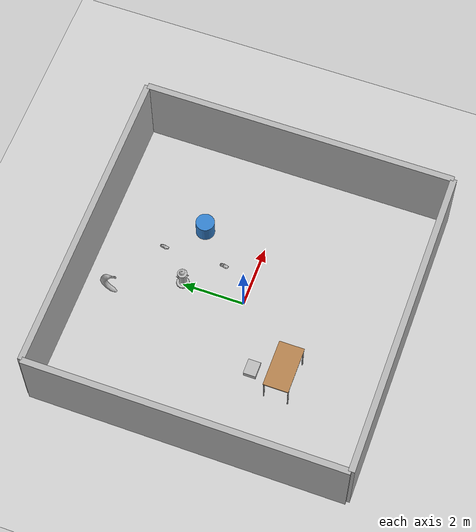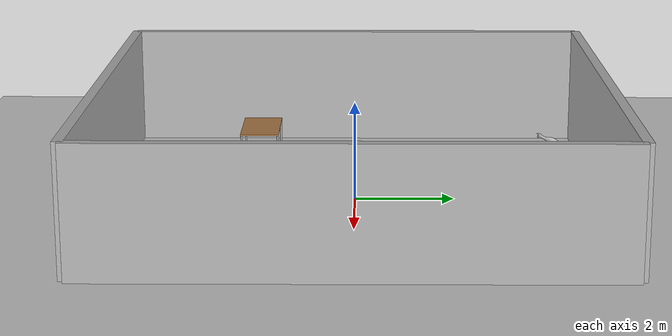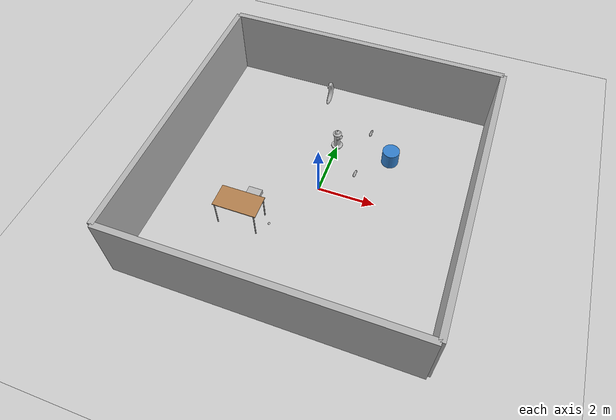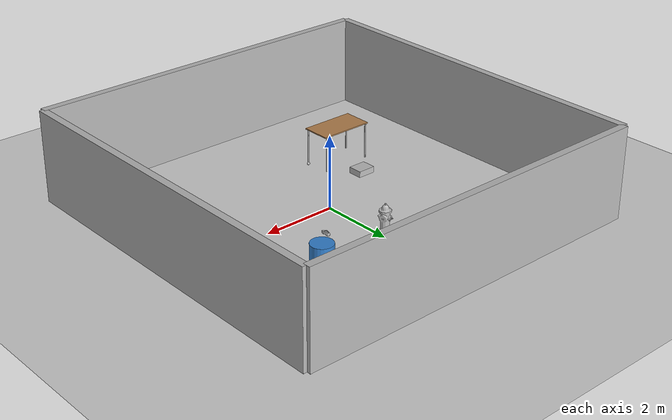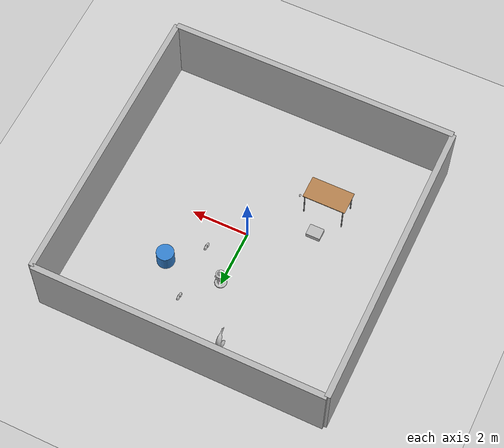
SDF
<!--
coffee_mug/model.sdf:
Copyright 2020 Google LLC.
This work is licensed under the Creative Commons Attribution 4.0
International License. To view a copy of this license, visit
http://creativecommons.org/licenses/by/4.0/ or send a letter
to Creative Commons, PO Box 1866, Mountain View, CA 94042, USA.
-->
<sdf version="1.11">
 <world name="simple_world">
  <physics name="default_physics" type="ode">
   <max_step_size>0.005</max_step_size>
   <real_time_update_rate>200</real_time_update_rate>
   <ode><solver><type>quick</type><iters>10</iters><precon_iters>0</precon_iters><sor>1.2</sor></solver></ode>
  </physics>
  <plugin filename="gz-sim-physics-system" name="gz::sim::systems::Physics"/>
  <plugin filename="gz-sim-user-commands-system" name="gz::sim::systems::UserCommands"/>
  <plugin filename="gz-sim-scene-broadcaster-system" name="gz::sim::systems::SceneBroadcaster"/>
  <plugin filename="gz-sim-imu-system" name="gz::sim::systems::Imu"/>
  <plugin filename="gz-sim-sensors-system" name="gz::sim::systems::Sensors">
   <render_engine>ogre2</render_engine>
  </plugin>
  <light type="directional" name="sun">
   <pose>0 0 10 0 0 0</pose>
   <diffuse>0.8 0.8 0.8 1</diffuse>
   <specular>0.2 0.2 0.2 1</specular>
   <attenuation>
    <range>1000</range>
    <constant>0.9</constant>
    <linear>0.01</linear>
    <quadratic>0.001</quadratic>
   </attenuation>
   <direction>-0.5 0.1 -0.9</direction>
  </light>
  <model name="ground_plane">
   <static>true</static>
   <link name="link">
    <collision name="collision"><geometry><plane><normal>0 0 1</normal></plane></geometry></collision>
    <visual name="visual">
     <geometry><plane><normal>0 0 1</normal><size>100 100</size></plane></geometry>
     <material>
      <ambient>0.8 0.8 0.8 1</ambient>
      <diffuse>0.8 0.8 0.8 1</diffuse>
      <specular>0.8 0.8 0.8 1</specular>
     </material>
    </visual>
   </link>
  </model>
  <include>
   <uri>model://coffee_mug</uri>
   <name>mug</name>
   <pose>1 1 0.05 0 0 0</pose>
   <static>false</static>
  </include>
  <include>
   <uri>model://cole_hardware_hammer_black</uri>
   <name>hw_hammer</name>
   <pose>1 3 0.05 0 0 0</pose>
   <static>false</static>
  </include>
  <include>
   <uri>model://fire_hydrant</uri>
   <name>hydrant</name>
   <pose>0 2 0.0 0 0 2</pose>
   <static>true</static>
  </include>
  <include>
   <uri>model://big_banana_for_scale</uri>
   <name>banana</name>
   <pose>-1 4 0.05 0 0 0</pose>
   <static>true</static>
  </include>
  <include>
   <uri>model://cardboard_box</uri>
   <name>box</name>
   <pose>-2 -1 0.0 0 0 0</pose>
   <static>true</static>
  </include>
  <include><uri>model://table</uri><name>table</name><pose>-2 -2 0.0 0 0 0</pose><static>true</static></include>
  <include><uri>model://ball</uri><name>ball</name><pose>-1 -2 0.2 0 0 0</pose><static>false</static></include>
  <model name="wall_north">
   <pose>0 5 1.25 0 0 0</pose>
   <static>true</static>
   <link name="link">
    <collision name="col"><geometry><box><size>10 0.2 2.5</size></box></geometry></collision>
    <visual name="vis">
     <geometry><box><size>10 0.2 2.5</size></box></geometry>
     <material>
      <ambient>0.7 0.7 0.7 1</ambient>
      <diffuse>0.7 0.7 0.7 1</diffuse>
      <specular>0 0 0 1</specular>
      <emissive>0.03 0.03 0.03 1</emissive>
      <pbr><metal><roughness>0.9</roughness><metalness>0.0</metalness></metal></pbr>
     </material>
    </visual>
   </link>
  </model>
  <model name="wall_south">
   <pose>0 -5 1.25 0 0 0</pose>
   <static>true</static>
   <link name="link">
    <collision name="col"><geometry><box><size>10 0.2 2.5</size></box></geometry></collision>
    <visual name="vis">
     <geometry><box><size>10 0.2 2.5</size></box></geometry>
     <material>
      <ambient>0.7 0.7 0.7 1</ambient>
      <diffuse>0.7 0.7 0.7 1</diffuse>
      <specular>0 0 0 1</specular>
      <emissive>0.03 0.03 0.03 1</emissive>
      <pbr><metal><roughness>0.9</roughness><metalness>0.0</metalness></metal></pbr>
     </material>
    </visual>
   </link>
  </model>
  <model name="wall_east">
   <pose>5 0 1.25 0 0 1.5708</pose>
   <static>true</static>
   <link name="link">
    <collision name="col"><geometry><box><size>10 0.2 2.5</size></box></geometry></collision>
    <visual name="vis">
     <geometry><box><size>10 0.2 2.5</size></box></geometry>
     <material>
      <ambient>0.7 0.7 0.7 1</ambient>
      <diffuse>0.7 0.7 0.7 1</diffuse>
      <specular>0 0 0 1</specular>
      <emissive>0.03 0.03 0.03 1</emissive>
      <pbr><metal><roughness>0.9</roughness><metalness>0.0</metalness></metal></pbr>
     </material>
    </visual>
   </link>
  </model>
  <model name="wall_west">
   <pose>-5 0 1.25 0 0 1.5708</pose>
   <static>true</static>
   <link name="link">
    <collision name="col"><geometry><box><size>10 0.2 2.5</size></box></geometry></collision>
    <visual name="vis">
     <geometry><box><size>10 0.2 2.5</size></box></geometry>
     <material>
      <ambient>0.7 0.7 0.7 1</ambient>
      <diffuse>0.7 0.7 0.7 1</diffuse>
      <specular>0 0 0 1</specular>
      <emissive>0.03 0.03 0.03 1</emissive>
      <pbr><metal><roughness>0.9</roughness><metalness>0.0</metalness></metal></pbr>
     </material>
    </visual>
   </link>
  </model>
  <model name="cylinder_1">
   <pose>2 2 0.3 0 0 0</pose>
   <static>true</static>
   <link name="link">
    <collision name="col">
     <geometry><cylinder><radius>0.3</radius><length>0.6</length></cylinder></geometry>
     <surface>
      <contact><collide_bitmask>0x01</collide_bitmask></contact>
      <friction><ode><mu>1.0</mu><mu2>1.0</mu2></ode></friction>
     </surface>
    </collision>
    <visual name="vis">
     <geometry><cylinder><radius>0.3</radius><length>0.6</length></cylinder></geometry>
     <material>
      <ambient>0.2 0.5 0.8 1</ambient>
      <diffuse>0.2 0.5 0.8 1</diffuse>
      <specular>0.1 0.1 0.1 1</specular>
     </material>
    </visual>
   </link>
  </model>
 </world>
</sdf>

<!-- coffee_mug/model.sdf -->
<sdf version="1.6">
    <model name="Threshold_Porcelain_Coffee_Mug_All_Over_Bead_White">
        <link name="link_0">
            <visual name="visual">
                <geometry>
                    <mesh>
                        <uri>meshes/model.obj</uri>
                    </mesh>
                </geometry>
            </visual>
            <collision name="collision_0">
                <geometry>
                    <mesh>
                        <uri>meshes/model.obj</uri>
                    </mesh>
                </geometry>
            </collision>
        </link>
    </model>
</sdf>

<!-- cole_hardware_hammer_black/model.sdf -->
<sdf version="1.6">
    <model name="Cole_Hardware_Hammer_Black">
        <link name="link_0">
            <visual name="visual">
                <geometry>
                    <mesh>
                        <uri>meshes/model.obj</uri>
                    </mesh>
                </geometry>
            </visual>
            <collision name="collision_0">
                <geometry>
                    <mesh>
                        <uri>meshes/model.obj</uri>
                    </mesh>
                </geometry>
            </collision>
        </link>
    </model>
</sdf>

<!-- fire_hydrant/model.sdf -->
<sdf version="1.5">
    <model name="fire_hydrant">
        <static>true</static>
        <link name="link">
            <collision name="collision">
                <geometry>
                    <mesh>
                        <uri>model://fire_hydrant/meshes/fire_hydrant.dae</uri>
                    </mesh>
                </geometry>
            </collision>
            <visual name="visual">
                <geometry>
                    <mesh>
                        <uri>model://fire_hydrant/meshes/fire_hydrant.dae</uri>
                    </mesh>
                </geometry>
            </visual>
        </link>
    </model>
</sdf>

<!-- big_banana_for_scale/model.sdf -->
<sdf version="1.6">
    <model name="Big Banana for Scale">
        <static>true</static>
        <link name="link">
            <collision name="collision">
                <pose>0 0 0.6 0 0 1.5708</pose>
                <geometry>
                    <mesh>
                        <uri>meshes/Banana.dae</uri>
                    </mesh>
                </geometry>
            </collision>
            <visual name="visual">
                <pose>0 0 0.6 0 0 1.5708</pose>
                <geometry>
                    <mesh>
                        <uri>meshes/Banana.dae</uri>
                    </mesh>
                </geometry>
            </visual>
        </link>
    </model>
</sdf>

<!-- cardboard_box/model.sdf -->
<sdf version="1.6">
    <model name="cardboard_box">
        <pose>0 0 0.15 0 0 0</pose>
        <link name="link">
            <inertial>
                <mass>2</mass>
                <inertia>
                    <ixx>0.041666667</ixx>
                    <ixy>0</ixy>
                    <ixz>0</ixz>
                    <iyy>0.056666667</iyy>
                    <iyz>0</iyz>
                    <izz>0.068333333</izz>
                </inertia>
            </inertial>
            <collision name="collision">
                <geometry>
                    <box>
                        <size>0.5 0.4 0.3</size>
                    </box>
                </geometry>
                <surface>
                    <friction>
                        <ode>
                            <mu>1.0</mu>
                            <mu2>1.0</mu2>
                        </ode>
                    </friction>
                    <contact>
                        <ode>
                            <kp>10000000.0</kp>
                            <kd>1.0</kd>
                            <min_depth>0.001</min_depth>
                            <max_vel>0.1</max_vel>
                        </ode>
                    </contact>
                </surface>
            </collision>
            <visual name="visual">
                <pose>0 0 -0.15 0 0 0</pose>
                <geometry>
                    <mesh>
                        <uri>model://cardboard_box/meshes/cardboard_box.dae</uri>
                        <scale>1.25931896 1.007455168 0.755591376</scale>
                    </mesh>
                </geometry>
            </visual>
        </link>
    </model>
</sdf>

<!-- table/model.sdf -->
<sdf version="1.5">
    <model name="Table">
        <static>true</static>
        <link name="link">
            <collision name="surface">
                <pose>0 0 1.0 0 0 0</pose>
                <geometry>
                    <box>
                        <size>1.5 0.8 0.03</size>
                    </box>
                </geometry>
                <surface>
                    <friction>
                        <ode>
                            <mu>0.6</mu>
                            <mu2>0.6</mu2>
                        </ode>
                    </friction>
                </surface>
            </collision>
            <visual name="visual1">
                <pose>0 0 1.0 0 0 0</pose>
                <geometry>
                    <box>
                        <size>1.5 0.8 0.03</size>
                    </box>
                </geometry>
                <material>
                    <diffuse>1.0 1.0 1.0</diffuse>
                    <script>
                        <uri>file://media/materials/scripts/gazebo.material</uri>
                        <name>Gazebo/Wood</name>
                    </script>
                    <!-- PBR for Ignition, material scripts for gazebo classic-->
                    <pbr>
                        <metal>
                            <albedo_map>model://table/Table_Diffuse.jpg</albedo_map>
                        </metal>
                    </pbr>
                </material>
            </visual>
            <collision name="front_left_leg">
                <pose>0.68 0.38 0.5 0 0 0</pose>
                <geometry>
                    <cylinder>
                        <radius>0.02</radius>
                        <length>1.0</length>
                    </cylinder>
                </geometry>
            </collision>
            <visual name="front_left_leg">
                <pose>0.68 0.38 0.5 0 0 0</pose>
                <geometry>
                    <cylinder>
                        <radius>0.02</radius>
                        <length>1.0</length>
                    </cylinder>
                </geometry>
                <material>
                    <diffuse>0.5 0.5 0.5</diffuse>
                    <script>
                        <uri>file://media/materials/scripts/gazebo.material</uri>
                        <name>Gazebo/Grey</name>
                    </script>
                </material>
            </visual>
            <collision name="front_right_leg">
                <pose>0.68 -0.38 0.5 0 0 0</pose>
                <geometry>
                    <cylinder>
                        <radius>0.02</radius>
                        <length>1.0</length>
                    </cylinder>
                </geometry>
            </collision>
            <visual name="front_right_leg">
                <pose>0.68 -0.38 0.5 0 0 0</pose>
                <geometry>
                    <cylinder>
                        <radius>0.02</radius>
                        <length>1.0</length>
                    </cylinder>
                </geometry>
                <material>
                    <diffuse>0.5 0.5 0.5</diffuse>
                    <script>
                        <uri>file://media/materials/scripts/gazebo.material</uri>
                        <name>Gazebo/Grey</name>
                    </script>
                </material>
            </visual>
            <collision name="back_right_leg">
                <pose>-0.68 -0.38 0.5 0 0 0</pose>
                <geometry>
                    <cylinder>
                        <radius>0.02</radius>
                        <length>1.0</length>
                    </cylinder>
                </geometry>
            </collision>
            <visual name="back_right_leg">
                <pose>-0.68 -0.38 0.5 0 0 0</pose>
                <geometry>
                    <cylinder>
                        <radius>0.02</radius>
                        <length>1.0</length>
                    </cylinder>
                </geometry>
                <material>
                    <diffuse>0.5 0.5 0.5</diffuse>
                    <script>
                        <uri>file://media/materials/scripts/gazebo.material</uri>
                        <name>Gazebo/Grey</name>
                    </script>
                </material>
            </visual>
            <collision name="back_left_leg">
                <pose>-0.68 0.38 0.5 0 0 0</pose>
                <geometry>
                    <cylinder>
                        <radius>0.02</radius>
                        <length>1.0</length>
                    </cylinder>
                </geometry>
            </collision>
            <visual name="back_left_leg">
                <pose>-0.68 0.38 0.5 0 0 0</pose>
                <geometry>
                    <cylinder>
                        <radius>0.02</radius>
                        <length>1.0</length>
                    </cylinder>
                </geometry>
                <material>
                    <diffuse>0.5 0.5 0.5</diffuse>
                    <script>
                        <uri>file://media/materials/scripts/gazebo.material</uri>
                        <name>Gazebo/Grey</name>
                    </script>
                </material>
            </visual>
        </link>
    </model>
</sdf>

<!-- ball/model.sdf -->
<sdf version="1.5">
    <model name="soccer_ball">
        <static>false</static>
        <link name="soccer_ball_link">
            <pose>0 0 0 0 0 0</pose>
            <inertial>
                <mass>0.026</mass>
                <!-- inertia based on solid sphere 2/5 mr^2 -->
                <inertia>
                    <ixx>1.664e-5</ixx>
                    <iyy>1.664e-5</iyy>
                    <izz>1.664e-5</izz>
                    <ixy>0</ixy>
                    <ixz>0</ixz>
                    <iyz>0</iyz>
                </inertia>
            </inertial>
            <collision name="collision">
                <geometry>
                    <sphere>
                        <radius>0.04</radius>
                    </sphere>
                </geometry>
            </collision>
            <visual name="visual">
                <geometry>
                    <mesh>
                        <scale>0.04 0.04 0.04</scale>
                        <uri>model://ball/meshes/ball.dae</uri>
                    </mesh>
                </geometry>
            </visual>
        </link>
    </model>
</sdf>
